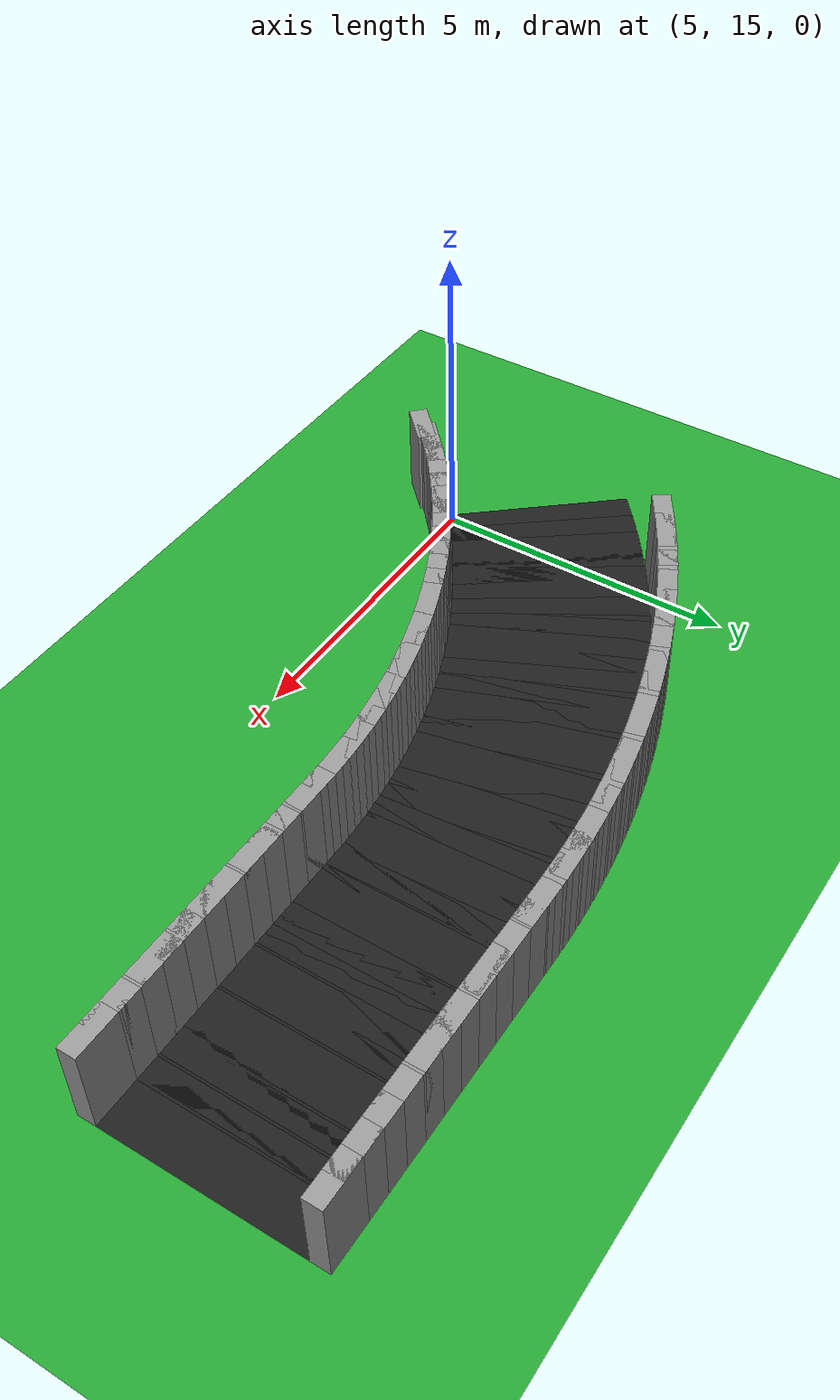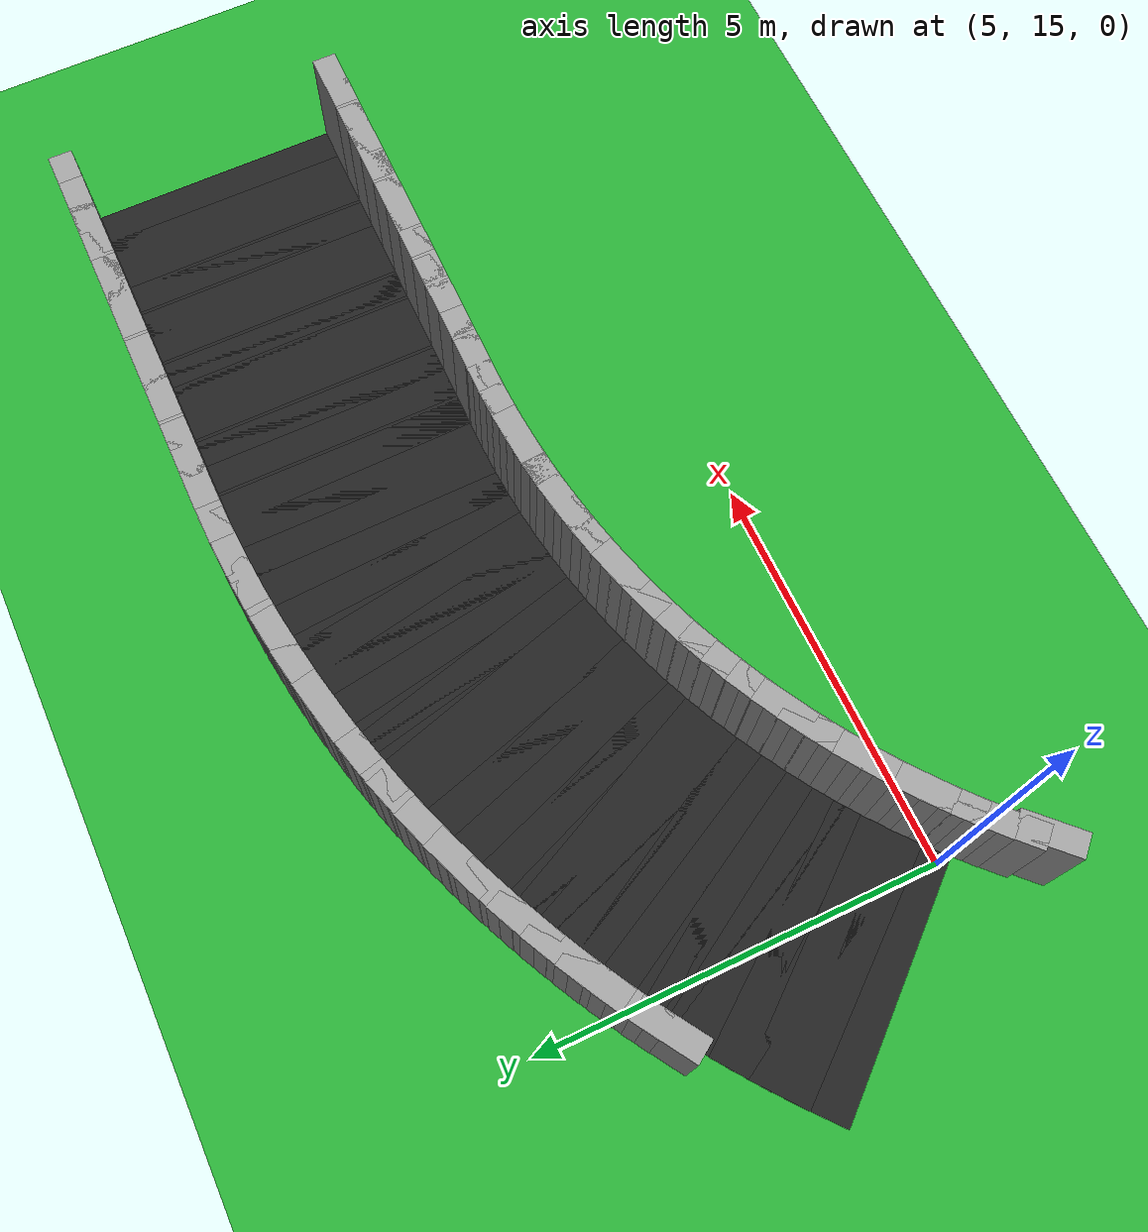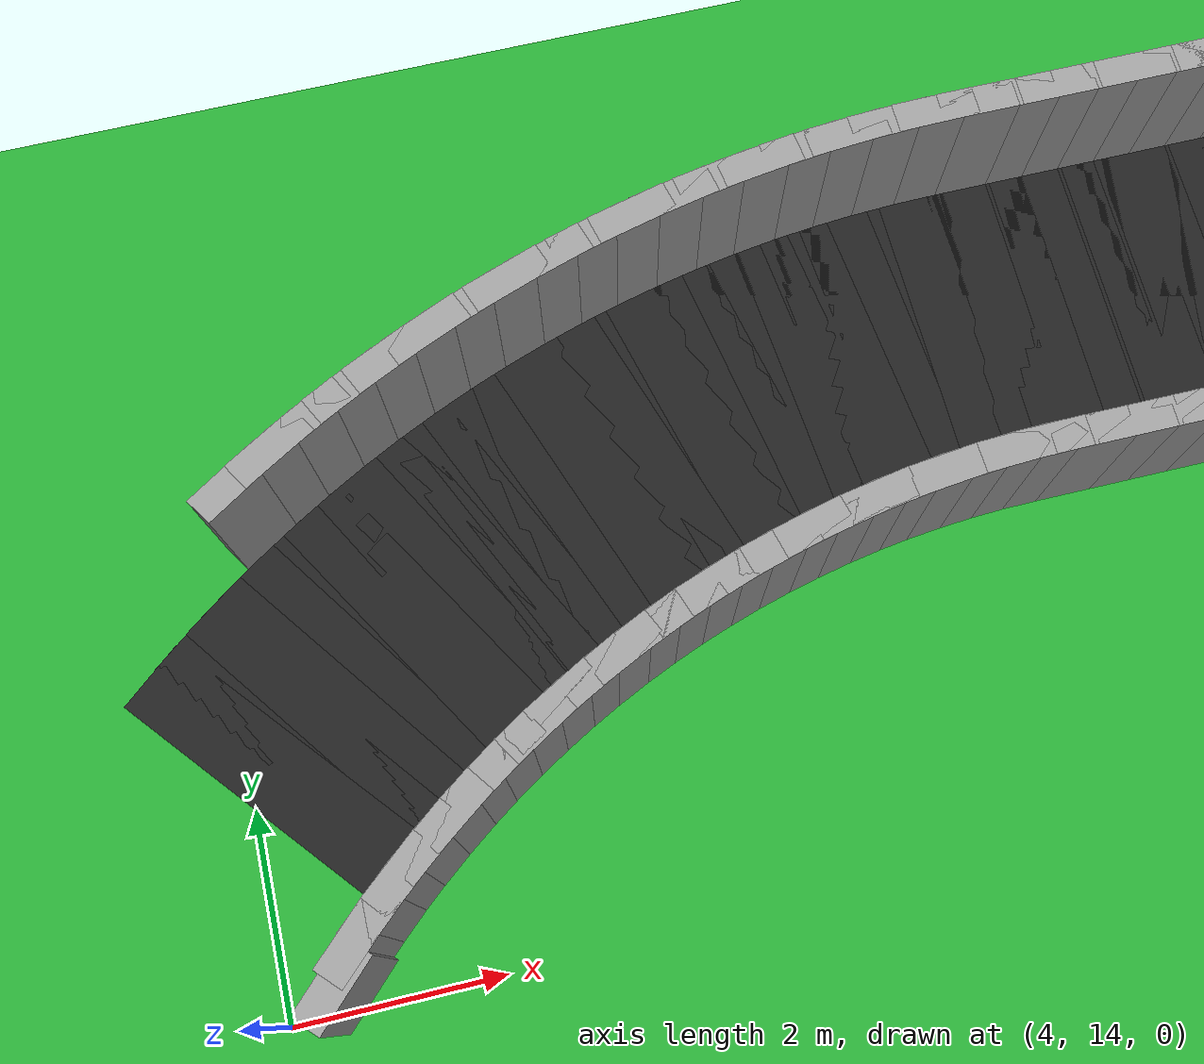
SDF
<sdf version="1.6">
 <world name="obstacle_taper">
  <include><uri>model://sun</uri></include>
  <model name="ground_plane">
   <static>true</static>
   <link name="link">
    <collision name="collision">
     <surface><friction><ode><mu>100</mu><mu2>50</mu2></ode></friction></surface>
     <geometry><plane><normal>0 0 1</normal><size>120 120</size></plane></geometry>
    </collision>
    <visual name="visual">
     <geometry><plane><normal>0 0 1</normal><size>120 120</size></plane></geometry>
     <material>
      <script><uri>file://media/materials/scripts/gazebo.material</uri><name>Gazebo/Green</name></script>
     </material>
    </visual>
   </link>
  </model>
  <model name="asphalt_176">
   <static>true</static>
   <pose>16.620 19.124 0.005 0 0 3.14159</pose>
   <link name="link">
    <visual name="visual">
     <geometry><box><size>0.760 3.200 0.010</size></box></geometry>
     <material>
      <script><uri>file://media/materials/scripts/gazebo.material</uri><name>Gazebo/Black</name></script>
     </material>
    </visual>
   </link>
  </model>
  <model name="curbL_176">
   <static>true</static>
   <pose>16.620 17.374 0.750 0 0 3.14159</pose>
   <link name="link">
    <collision name="collision"><geometry><box><size>0.760 0.300 1.500</size></box></geometry></collision>
    <visual name="visual">
     <geometry><box><size>0.760 0.300 1.500</size></box></geometry>
     <material>
      <script><uri>file://media/materials/scripts/gazebo.material</uri><name>Gazebo/Grey</name></script>
     </material>
    </visual>
   </link>
  </model>
  <model name="curbR_176">
   <static>true</static>
   <pose>16.620 20.874 0.750 0 0 3.14159</pose>
   <link name="link">
    <collision name="collision"><geometry><box><size>0.760 0.300 1.500</size></box></geometry></collision>
    <visual name="visual">
     <geometry><box><size>0.760 0.300 1.500</size></box></geometry>
     <material>
      <script><uri>file://media/materials/scripts/gazebo.material</uri><name>Gazebo/Grey</name></script>
     </material>
    </visual>
   </link>
  </model>
  <model name="asphalt_177">
   <static>true</static>
   <pose>16.220 19.124 0.005 0 0 3.14159</pose>
   <link name="link">
    <visual name="visual">
     <geometry><box><size>0.760 3.200 0.010</size></box></geometry>
     <material>
      <script><uri>file://media/materials/scripts/gazebo.material</uri><name>Gazebo/Black</name></script>
     </material>
    </visual>
   </link>
  </model>
  <model name="curbL_177">
   <static>true</static>
   <pose>16.220 17.374 0.750 0 0 3.14159</pose>
   <link name="link">
    <collision name="collision"><geometry><box><size>0.760 0.300 1.500</size></box></geometry></collision>
    <visual name="visual">
     <geometry><box><size>0.760 0.300 1.500</size></box></geometry>
     <material>
      <script><uri>file://media/materials/scripts/gazebo.material</uri><name>Gazebo/Grey</name></script>
     </material>
    </visual>
   </link>
  </model>
  <model name="curbR_177">
   <static>true</static>
   <pose>16.220 20.874 0.750 0 0 3.14159</pose>
   <link name="link">
    <collision name="collision"><geometry><box><size>0.760 0.300 1.500</size></box></geometry></collision>
    <visual name="visual">
     <geometry><box><size>0.760 0.300 1.500</size></box></geometry>
     <material>
      <script><uri>file://media/materials/scripts/gazebo.material</uri><name>Gazebo/Grey</name></script>
     </material>
    </visual>
   </link>
  </model>
  <model name="asphalt_178">
   <static>true</static>
   <pose>15.820 19.124 0.005 0 0 3.14159</pose>
   <link name="link">
    <visual name="visual">
     <geometry><box><size>0.760 3.200 0.010</size></box></geometry>
     <material>
      <script><uri>file://media/materials/scripts/gazebo.material</uri><name>Gazebo/Black</name></script>
     </material>
    </visual>
   </link>
  </model>
  <model name="curbL_178">
   <static>true</static>
   <pose>15.820 17.374 0.750 0 0 3.14159</pose>
   <link name="link">
    <collision name="collision"><geometry><box><size>0.760 0.300 1.500</size></box></geometry></collision>
    <visual name="visual">
     <geometry><box><size>0.760 0.300 1.500</size></box></geometry>
     <material>
      <script><uri>file://media/materials/scripts/gazebo.material</uri><name>Gazebo/Grey</name></script>
     </material>
    </visual>
   </link>
  </model>
  <model name="curbR_178">
   <static>true</static>
   <pose>15.820 20.874 0.750 0 0 3.14159</pose>
   <link name="link">
    <collision name="collision"><geometry><box><size>0.760 0.300 1.500</size></box></geometry></collision>
    <visual name="visual">
     <geometry><box><size>0.760 0.300 1.500</size></box></geometry>
     <material>
      <script><uri>file://media/materials/scripts/gazebo.material</uri><name>Gazebo/Grey</name></script>
     </material>
    </visual>
   </link>
  </model>
  <model name="asphalt_179">
   <static>true</static>
   <pose>15.420 19.124 0.005 0 0 3.14159</pose>
   <link name="link">
    <visual name="visual">
     <geometry><box><size>0.760 3.200 0.010</size></box></geometry>
     <material>
      <script><uri>file://media/materials/scripts/gazebo.material</uri><name>Gazebo/Black</name></script>
     </material>
    </visual>
   </link>
  </model>
  <model name="curbL_179">
   <static>true</static>
   <pose>15.420 17.374 0.750 0 0 3.14159</pose>
   <link name="link">
    <collision name="collision"><geometry><box><size>0.760 0.300 1.500</size></box></geometry></collision>
    <visual name="visual">
     <geometry><box><size>0.760 0.300 1.500</size></box></geometry>
     <material>
      <script><uri>file://media/materials/scripts/gazebo.material</uri><name>Gazebo/Grey</name></script>
     </material>
    </visual>
   </link>
  </model>
  <model name="curbR_179">
   <static>true</static>
   <pose>15.420 20.874 0.750 0 0 3.14159</pose>
   <link name="link">
    <collision name="collision"><geometry><box><size>0.760 0.300 1.500</size></box></geometry></collision>
    <visual name="visual">
     <geometry><box><size>0.760 0.300 1.500</size></box></geometry>
     <material>
      <script><uri>file://media/materials/scripts/gazebo.material</uri><name>Gazebo/Grey</name></script>
     </material>
    </visual>
   </link>
  </model>
  <model name="asphalt_180">
   <static>true</static>
   <pose>15.020 19.124 0.005 0 0 3.14159</pose>
   <link name="link">
    <visual name="visual">
     <geometry><box><size>0.760 3.200 0.010</size></box></geometry>
     <material>
      <script><uri>file://media/materials/scripts/gazebo.material</uri><name>Gazebo/Black</name></script>
     </material>
    </visual>
   </link>
  </model>
  <model name="curbL_180">
   <static>true</static>
   <pose>15.020 17.374 0.750 0 0 3.14159</pose>
   <link name="link">
    <collision name="collision"><geometry><box><size>0.760 0.300 1.500</size></box></geometry></collision>
    <visual name="visual">
     <geometry><box><size>0.760 0.300 1.500</size></box></geometry>
     <material>
      <script><uri>file://media/materials/scripts/gazebo.material</uri><name>Gazebo/Grey</name></script>
     </material>
    </visual>
   </link>
  </model>
  <model name="curbR_180">
   <static>true</static>
   <pose>15.020 20.874 0.750 0 0 3.14159</pose>
   <link name="link">
    <collision name="collision"><geometry><box><size>0.760 0.300 1.500</size></box></geometry></collision>
    <visual name="visual">
     <geometry><box><size>0.760 0.300 1.500</size></box></geometry>
     <material>
      <script><uri>file://media/materials/scripts/gazebo.material</uri><name>Gazebo/Grey</name></script>
     </material>
    </visual>
   </link>
  </model>
  <model name="asphalt_181">
   <static>true</static>
   <pose>14.620 19.124 0.005 0 0 3.14159</pose>
   <link name="link">
    <visual name="visual">
     <geometry><box><size>0.760 3.200 0.010</size></box></geometry>
     <material>
      <script><uri>file://media/materials/scripts/gazebo.material</uri><name>Gazebo/Black</name></script>
     </material>
    </visual>
   </link>
  </model>
  <model name="curbL_181">
   <static>true</static>
   <pose>14.620 17.374 0.750 0 0 3.14159</pose>
   <link name="link">
    <collision name="collision"><geometry><box><size>0.760 0.300 1.500</size></box></geometry></collision>
    <visual name="visual">
     <geometry><box><size>0.760 0.300 1.500</size></box></geometry>
     <material>
      <script><uri>file://media/materials/scripts/gazebo.material</uri><name>Gazebo/Grey</name></script>
     </material>
    </visual>
   </link>
  </model>
  <model name="curbR_181">
   <static>true</static>
   <pose>14.620 20.874 0.750 0 0 3.14159</pose>
   <link name="link">
    <collision name="collision"><geometry><box><size>0.760 0.300 1.500</size></box></geometry></collision>
    <visual name="visual">
     <geometry><box><size>0.760 0.300 1.500</size></box></geometry>
     <material>
      <script><uri>file://media/materials/scripts/gazebo.material</uri><name>Gazebo/Grey</name></script>
     </material>
    </visual>
   </link>
  </model>
  <model name="asphalt_182">
   <static>true</static>
   <pose>14.220 19.124 0.005 0 0 3.14159</pose>
   <link name="link">
    <visual name="visual">
     <geometry><box><size>0.760 3.200 0.010</size></box></geometry>
     <material>
      <script><uri>file://media/materials/scripts/gazebo.material</uri><name>Gazebo/Black</name></script>
     </material>
    </visual>
   </link>
  </model>
  <model name="curbL_182">
   <static>true</static>
   <pose>14.220 17.374 0.750 0 0 3.14159</pose>
   <link name="link">
    <collision name="collision"><geometry><box><size>0.760 0.300 1.500</size></box></geometry></collision>
    <visual name="visual">
     <geometry><box><size>0.760 0.300 1.500</size></box></geometry>
     <material>
      <script><uri>file://media/materials/scripts/gazebo.material</uri><name>Gazebo/Grey</name></script>
     </material>
    </visual>
   </link>
  </model>
  <model name="curbR_182">
   <static>true</static>
   <pose>14.220 20.874 0.750 0 0 3.14159</pose>
   <link name="link">
    <collision name="collision"><geometry><box><size>0.760 0.300 1.500</size></box></geometry></collision>
    <visual name="visual">
     <geometry><box><size>0.760 0.300 1.500</size></box></geometry>
     <material>
      <script><uri>file://media/materials/scripts/gazebo.material</uri><name>Gazebo/Grey</name></script>
     </material>
    </visual>
   </link>
  </model>
  <model name="asphalt_183">
   <static>true</static>
   <pose>13.820 19.124 0.005 0 0 3.14159</pose>
   <link name="link">
    <visual name="visual">
     <geometry><box><size>0.760 3.200 0.010</size></box></geometry>
     <material>
      <script><uri>file://media/materials/scripts/gazebo.material</uri><name>Gazebo/Black</name></script>
     </material>
    </visual>
   </link>
  </model>
  <model name="curbL_183">
   <static>true</static>
   <pose>13.820 17.374 0.750 0 0 3.14159</pose>
   <link name="link">
    <collision name="collision"><geometry><box><size>0.760 0.300 1.500</size></box></geometry></collision>
    <visual name="visual">
     <geometry><box><size>0.760 0.300 1.500</size></box></geometry>
     <material>
      <script><uri>file://media/materials/scripts/gazebo.material</uri><name>Gazebo/Grey</name></script>
     </material>
    </visual>
   </link>
  </model>
  <model name="curbR_183">
   <static>true</static>
   <pose>13.820 20.874 0.750 0 0 3.14159</pose>
   <link name="link">
    <collision name="collision"><geometry><box><size>0.760 0.300 1.500</size></box></geometry></collision>
    <visual name="visual">
     <geometry><box><size>0.760 0.300 1.500</size></box></geometry>
     <material>
      <script><uri>file://media/materials/scripts/gazebo.material</uri><name>Gazebo/Grey</name></script>
     </material>
    </visual>
   </link>
  </model>
  <model name="asphalt_184">
   <static>true</static>
   <pose>13.420 19.124 0.005 0 0 3.14159</pose>
   <link name="link">
    <visual name="visual">
     <geometry><box><size>0.760 3.200 0.010</size></box></geometry>
     <material>
      <script><uri>file://media/materials/scripts/gazebo.material</uri><name>Gazebo/Black</name></script>
     </material>
    </visual>
   </link>
  </model>
  <model name="curbL_184">
   <static>true</static>
   <pose>13.420 17.374 0.750 0 0 3.14159</pose>
   <link name="link">
    <collision name="collision"><geometry><box><size>0.760 0.300 1.500</size></box></geometry></collision>
    <visual name="visual">
     <geometry><box><size>0.760 0.300 1.500</size></box></geometry>
     <material>
      <script><uri>file://media/materials/scripts/gazebo.material</uri><name>Gazebo/Grey</name></script>
     </material>
    </visual>
   </link>
  </model>
  <model name="curbR_184">
   <static>true</static>
   <pose>13.420 20.874 0.750 0 0 3.14159</pose>
   <link name="link">
    <collision name="collision"><geometry><box><size>0.760 0.300 1.500</size></box></geometry></collision>
    <visual name="visual">
     <geometry><box><size>0.760 0.300 1.500</size></box></geometry>
     <material>
      <script><uri>file://media/materials/scripts/gazebo.material</uri><name>Gazebo/Grey</name></script>
     </material>
    </visual>
   </link>
  </model>
  <model name="asphalt_185">
   <static>true</static>
   <pose>13.020 19.124 0.005 0 0 3.14159</pose>
   <link name="link">
    <visual name="visual">
     <geometry><box><size>0.760 3.200 0.010</size></box></geometry>
     <material>
      <script><uri>file://media/materials/scripts/gazebo.material</uri><name>Gazebo/Black</name></script>
     </material>
    </visual>
   </link>
  </model>
  <model name="curbL_185">
   <static>true</static>
   <pose>13.020 17.374 0.750 0 0 3.14159</pose>
   <link name="link">
    <collision name="collision"><geometry><box><size>0.760 0.300 1.500</size></box></geometry></collision>
    <visual name="visual">
     <geometry><box><size>0.760 0.300 1.500</size></box></geometry>
     <material>
      <script><uri>file://media/materials/scripts/gazebo.material</uri><name>Gazebo/Grey</name></script>
     </material>
    </visual>
   </link>
  </model>
  <model name="curbR_185">
   <static>true</static>
   <pose>13.020 20.874 0.750 0 0 3.14159</pose>
   <link name="link">
    <collision name="collision"><geometry><box><size>0.760 0.300 1.500</size></box></geometry></collision>
    <visual name="visual">
     <geometry><box><size>0.760 0.300 1.500</size></box></geometry>
     <material>
      <script><uri>file://media/materials/scripts/gazebo.material</uri><name>Gazebo/Grey</name></script>
     </material>
    </visual>
   </link>
  </model>
  <model name="asphalt_186">
   <static>true</static>
   <pose>12.620 19.124 0.005 0 0 3.14159</pose>
   <link name="link">
    <visual name="visual">
     <geometry><box><size>0.760 3.200 0.010</size></box></geometry>
     <material>
      <script><uri>file://media/materials/scripts/gazebo.material</uri><name>Gazebo/Black</name></script>
     </material>
    </visual>
   </link>
  </model>
  <model name="curbL_186">
   <static>true</static>
   <pose>12.620 17.374 0.750 0 0 3.14159</pose>
   <link name="link">
    <collision name="collision"><geometry><box><size>0.760 0.300 1.500</size></box></geometry></collision>
    <visual name="visual">
     <geometry><box><size>0.760 0.300 1.500</size></box></geometry>
     <material>
      <script><uri>file://media/materials/scripts/gazebo.material</uri><name>Gazebo/Grey</name></script>
     </material>
    </visual>
   </link>
  </model>
  <model name="curbR_186">
   <static>true</static>
   <pose>12.620 20.874 0.750 0 0 3.14159</pose>
   <link name="link">
    <collision name="collision"><geometry><box><size>0.760 0.300 1.500</size></box></geometry></collision>
    <visual name="visual">
     <geometry><box><size>0.760 0.300 1.500</size></box></geometry>
     <material>
      <script><uri>file://media/materials/scripts/gazebo.material</uri><name>Gazebo/Grey</name></script>
     </material>
    </visual>
   </link>
  </model>
  <model name="asphalt_187">
   <static>true</static>
   <pose>12.220 19.124 0.005 0 0 3.14159</pose>
   <link name="link">
    <visual name="visual">
     <geometry><box><size>0.760 3.200 0.010</size></box></geometry>
     <material>
      <script><uri>file://media/materials/scripts/gazebo.material</uri><name>Gazebo/Black</name></script>
     </material>
    </visual>
   </link>
  </model>
  <model name="curbL_187">
   <static>true</static>
   <pose>12.220 17.374 0.750 0 0 3.14159</pose>
   <link name="link">
    <collision name="collision"><geometry><box><size>0.760 0.300 1.500</size></box></geometry></collision>
    <visual name="visual">
     <geometry><box><size>0.760 0.300 1.500</size></box></geometry>
     <material>
      <script><uri>file://media/materials/scripts/gazebo.material</uri><name>Gazebo/Grey</name></script>
     </material>
    </visual>
   </link>
  </model>
  <model name="curbR_187">
   <static>true</static>
   <pose>12.220 20.874 0.750 0 0 3.14159</pose>
   <link name="link">
    <collision name="collision"><geometry><box><size>0.760 0.300 1.500</size></box></geometry></collision>
    <visual name="visual">
     <geometry><box><size>0.760 0.300 1.500</size></box></geometry>
     <material>
      <script><uri>file://media/materials/scripts/gazebo.material</uri><name>Gazebo/Grey</name></script>
     </material>
    </visual>
   </link>
  </model>
  <model name="asphalt_188">
   <static>true</static>
   <pose>11.824 19.121 0.005 0 0 -3.12523</pose>
   <link name="link">
    <visual name="visual">
     <geometry><box><size>0.753 3.200 0.010</size></box></geometry>
     <material>
      <script><uri>file://media/materials/scripts/gazebo.material</uri><name>Gazebo/Black</name></script>
     </material>
    </visual>
   </link>
  </model>
  <model name="curbL_188">
   <static>true</static>
   <pose>11.853 17.371 0.750 0 0 -3.12523</pose>
   <link name="link">
    <collision name="collision"><geometry><box><size>0.695 0.300 1.500</size></box></geometry></collision>
    <visual name="visual">
     <geometry><box><size>0.695 0.300 1.500</size></box></geometry>
     <material>
      <script><uri>file://media/materials/scripts/gazebo.material</uri><name>Gazebo/Grey</name></script>
     </material>
    </visual>
   </link>
  </model>
  <model name="curbR_188">
   <static>true</static>
   <pose>11.795 20.870 0.750 0 0 -3.12523</pose>
   <link name="link">
    <collision name="collision"><geometry><box><size>0.810 0.300 1.500</size></box></geometry></collision>
    <visual name="visual">
     <geometry><box><size>0.810 0.300 1.500</size></box></geometry>
     <material>
      <script><uri>file://media/materials/scripts/gazebo.material</uri><name>Gazebo/Grey</name></script>
     </material>
    </visual>
   </link>
  </model>
  <model name="asphalt_189">
   <static>true</static>
   <pose>11.431 19.108 0.005 0 0 -3.09251</pose>
   <link name="link">
    <visual name="visual">
     <geometry><box><size>0.753 3.200 0.010</size></box></geometry>
     <material>
      <script><uri>file://media/materials/scripts/gazebo.material</uri><name>Gazebo/Black</name></script>
     </material>
    </visual>
   </link>
  </model>
  <model name="curbL_189">
   <static>true</static>
   <pose>11.517 17.360 0.750 0 0 -3.09251</pose>
   <link name="link">
    <collision name="collision"><geometry><box><size>0.695 0.300 1.500</size></box></geometry></collision>
    <visual name="visual">
     <geometry><box><size>0.695 0.300 1.500</size></box></geometry>
     <material>
      <script><uri>file://media/materials/scripts/gazebo.material</uri><name>Gazebo/Grey</name></script>
     </material>
    </visual>
   </link>
  </model>
  <model name="curbR_189">
   <static>true</static>
   <pose>11.346 20.855 0.750 0 0 -3.09251</pose>
   <link name="link">
    <collision name="collision"><geometry><box><size>0.810 0.300 1.500</size></box></geometry></collision>
    <visual name="visual">
     <geometry><box><size>0.810 0.300 1.500</size></box></geometry>
     <material>
      <script><uri>file://media/materials/scripts/gazebo.material</uri><name>Gazebo/Grey</name></script>
     </material>
    </visual>
   </link>
  </model>
  <model name="asphalt_190">
   <static>true</static>
   <pose>11.040 19.082 0.005 0 0 -3.05978</pose>
   <link name="link">
    <visual name="visual">
     <geometry><box><size>0.753 3.200 0.010</size></box></geometry>
     <material>
      <script><uri>file://media/materials/scripts/gazebo.material</uri><name>Gazebo/Black</name></script>
     </material>
    </visual>
   </link>
  </model>
  <model name="curbL_190">
   <static>true</static>
   <pose>11.183 17.338 0.750 0 0 -3.05978</pose>
   <link name="link">
    <collision name="collision"><geometry><box><size>0.695 0.300 1.500</size></box></geometry></collision>
    <visual name="visual">
     <geometry><box><size>0.695 0.300 1.500</size></box></geometry>
     <material>
      <script><uri>file://media/materials/scripts/gazebo.material</uri><name>Gazebo/Grey</name></script>
     </material>
    </visual>
   </link>
  </model>
  <model name="curbR_190">
   <static>true</static>
   <pose>10.897 20.826 0.750 0 0 -3.05978</pose>
   <link name="link">
    <collision name="collision"><geometry><box><size>0.810 0.300 1.500</size></box></geometry></collision>
    <visual name="visual">
     <geometry><box><size>0.810 0.300 1.500</size></box></geometry>
     <material>
      <script><uri>file://media/materials/scripts/gazebo.material</uri><name>Gazebo/Grey</name></script>
     </material>
    </visual>
   </link>
  </model>
  <model name="asphalt_191">
   <static>true</static>
   <pose>10.649 19.044 0.005 0 0 -3.02706</pose>
   <link name="link">
    <visual name="visual">
     <geometry><box><size>0.753 3.200 0.010</size></box></geometry>
     <material>
      <script><uri>file://media/materials/scripts/gazebo.material</uri><name>Gazebo/Black</name></script>
     </material>
    </visual>
   </link>
  </model>
  <model name="curbL_191">
   <static>true</static>
   <pose>10.849 17.305 0.750 0 0 -3.02706</pose>
   <link name="link">
    <collision name="collision"><geometry><box><size>0.695 0.300 1.500</size></box></geometry></collision>
    <visual name="visual">
     <geometry><box><size>0.695 0.300 1.500</size></box></geometry>
     <material>
      <script><uri>file://media/materials/scripts/gazebo.material</uri><name>Gazebo/Grey</name></script>
     </material>
    </visual>
   </link>
  </model>
  <model name="curbR_191">
   <static>true</static>
   <pose>10.449 20.782 0.750 0 0 -3.02706</pose>
   <link name="link">
    <collision name="collision"><geometry><box><size>0.810 0.300 1.500</size></box></geometry></collision>
    <visual name="visual">
     <geometry><box><size>0.810 0.300 1.500</size></box></geometry>
     <material>
      <script><uri>file://media/materials/scripts/gazebo.material</uri><name>Gazebo/Grey</name></script>
     </material>
    </visual>
   </link>
  </model>
  <model name="asphalt_192">
   <static>true</static>
   <pose>10.260 18.992 0.005 0 0 -2.99433</pose>
   <link name="link">
    <visual name="visual">
     <geometry><box><size>0.753 3.200 0.010</size></box></geometry>
     <material>
      <script><uri>file://media/materials/scripts/gazebo.material</uri><name>Gazebo/Black</name></script>
     </material>
    </visual>
   </link>
  </model>
  <model name="curbL_192">
   <static>true</static>
   <pose>10.516 17.262 0.750 0 0 -2.99433</pose>
   <link name="link">
    <collision name="collision"><geometry><box><size>0.695 0.300 1.500</size></box></geometry></collision>
    <visual name="visual">
     <geometry><box><size>0.695 0.300 1.500</size></box></geometry>
     <material>
      <script><uri>file://media/materials/scripts/gazebo.material</uri><name>Gazebo/Grey</name></script>
     </material>
    </visual>
   </link>
  </model>
  <model name="curbR_192">
   <static>true</static>
   <pose>10.003 20.723 0.750 0 0 -2.99433</pose>
   <link name="link">
    <collision name="collision"><geometry><box><size>0.810 0.300 1.500</size></box></geometry></collision>
    <visual name="visual">
     <geometry><box><size>0.810 0.300 1.500</size></box></geometry>
     <material>
      <script><uri>file://media/materials/scripts/gazebo.material</uri><name>Gazebo/Grey</name></script>
     </material>
    </visual>
   </link>
  </model>
  <model name="asphalt_193">
   <static>true</static>
   <pose>9.872 18.928 0.005 0 0 -2.96161</pose>
   <link name="link">
    <visual name="visual">
     <geometry><box><size>0.753 3.200 0.010</size></box></geometry>
     <material>
      <script><uri>file://media/materials/scripts/gazebo.material</uri><name>Gazebo/Black</name></script>
     </material>
    </visual>
   </link>
  </model>
  <model name="curbL_193">
   <static>true</static>
   <pose>10.185 17.207 0.750 0 0 -2.96161</pose>
   <link name="link">
    <collision name="collision"><geometry><box><size>0.695 0.300 1.500</size></box></geometry></collision>
    <visual name="visual">
     <geometry><box><size>0.695 0.300 1.500</size></box></geometry>
     <material>
      <script><uri>file://media/materials/scripts/gazebo.material</uri><name>Gazebo/Grey</name></script>
     </material>
    </visual>
   </link>
  </model>
  <model name="curbR_193">
   <static>true</static>
   <pose>9.559 20.650 0.750 0 0 -2.96161</pose>
   <link name="link">
    <collision name="collision"><geometry><box><size>0.810 0.300 1.500</size></box></geometry></collision>
    <visual name="visual">
     <geometry><box><size>0.810 0.300 1.500</size></box></geometry>
     <material>
      <script><uri>file://media/materials/scripts/gazebo.material</uri><name>Gazebo/Grey</name></script>
     </material>
    </visual>
   </link>
  </model>
  <model name="asphalt_194">
   <static>true</static>
   <pose>9.487 18.852 0.005 0 0 -2.92888</pose>
   <link name="link">
    <visual name="visual">
     <geometry><box><size>0.753 3.200 0.010</size></box></geometry>
     <material>
      <script><uri>file://media/materials/scripts/gazebo.material</uri><name>Gazebo/Black</name></script>
     </material>
    </visual>
   </link>
  </model>
  <model name="curbL_194">
   <static>true</static>
   <pose>9.857 17.141 0.750 0 0 -2.92888</pose>
   <link name="link">
    <collision name="collision"><geometry><box><size>0.695 0.300 1.500</size></box></geometry></collision>
    <visual name="visual">
     <geometry><box><size>0.695 0.300 1.500</size></box></geometry>
     <material>
      <script><uri>file://media/materials/scripts/gazebo.material</uri><name>Gazebo/Grey</name></script>
     </material>
    </visual>
   </link>
  </model>
  <model name="curbR_194">
   <static>true</static>
   <pose>9.118 20.562 0.750 0 0 -2.92888</pose>
   <link name="link">
    <collision name="collision"><geometry><box><size>0.810 0.300 1.500</size></box></geometry></collision>
    <visual name="visual">
     <geometry><box><size>0.810 0.300 1.500</size></box></geometry>
     <material>
      <script><uri>file://media/materials/scripts/gazebo.material</uri><name>Gazebo/Grey</name></script>
     </material>
    </visual>
   </link>
  </model>
  <model name="asphalt_195">
   <static>true</static>
   <pose>9.105 18.763 0.005 0 0 -2.89616</pose>
   <link name="link">
    <visual name="visual">
     <geometry><box><size>0.753 3.200 0.010</size></box></geometry>
     <material>
      <script><uri>file://media/materials/scripts/gazebo.material</uri><name>Gazebo/Black</name></script>
     </material>
    </visual>
   </link>
  </model>
  <model name="curbL_195">
   <static>true</static>
   <pose>9.530 17.065 0.750 0 0 -2.89616</pose>
   <link name="link">
    <collision name="collision"><geometry><box><size>0.695 0.300 1.500</size></box></geometry></collision>
    <visual name="visual">
     <geometry><box><size>0.695 0.300 1.500</size></box></geometry>
     <material>
      <script><uri>file://media/materials/scripts/gazebo.material</uri><name>Gazebo/Grey</name></script>
     </material>
    </visual>
   </link>
  </model>
  <model name="curbR_195">
   <static>true</static>
   <pose>8.680 20.460 0.750 0 0 -2.89616</pose>
   <link name="link">
    <collision name="collision"><geometry><box><size>0.810 0.300 1.500</size></box></geometry></collision>
    <visual name="visual">
     <geometry><box><size>0.810 0.300 1.500</size></box></geometry>
     <material>
      <script><uri>file://media/materials/scripts/gazebo.material</uri><name>Gazebo/Grey</name></script>
     </material>
    </visual>
   </link>
  </model>
  <model name="asphalt_196">
   <static>true</static>
   <pose>8.725 18.661 0.005 0 0 -2.86343</pose>
   <link name="link">
    <visual name="visual">
     <geometry><box><size>0.753 3.200 0.010</size></box></geometry>
     <material>
      <script><uri>file://media/materials/scripts/gazebo.material</uri><name>Gazebo/Black</name></script>
     </material>
    </visual>
   </link>
  </model>
  <model name="curbL_196">
   <static>true</static>
   <pose>9.206 16.978 0.750 0 0 -2.86343</pose>
   <link name="link">
    <collision name="collision"><geometry><box><size>0.695 0.300 1.500</size></box></geometry></collision>
    <visual name="visual">
     <geometry><box><size>0.695 0.300 1.500</size></box></geometry>
     <material>
      <script><uri>file://media/materials/scripts/gazebo.material</uri><name>Gazebo/Grey</name></script>
     </material>
    </visual>
   </link>
  </model>
  <model name="curbR_196">
   <static>true</static>
   <pose>8.245 20.344 0.750 0 0 -2.86343</pose>
   <link name="link">
    <collision name="collision"><geometry><box><size>0.810 0.300 1.500</size></box></geometry></collision>
    <visual name="visual">
     <geometry><box><size>0.810 0.300 1.500</size></box></geometry>
     <material>
      <script><uri>file://media/materials/scripts/gazebo.material</uri><name>Gazebo/Grey</name></script>
     </material>
    </visual>
   </link>
  </model>
  <model name="asphalt_197">
   <static>true</static>
   <pose>8.350 18.547 0.005 0 0 -2.83071</pose>
   <link name="link">
    <visual name="visual">
     <geometry><box><size>0.753 3.200 0.010</size></box></geometry>
     <material>
      <script><uri>file://media/materials/scripts/gazebo.material</uri><name>Gazebo/Black</name></script>
     </material>
    </visual>
   </link>
  </model>
  <model name="curbL_197">
   <static>true</static>
   <pose>8.885 16.881 0.750 0 0 -2.83071</pose>
   <link name="link">
    <collision name="collision"><geometry><box><size>0.695 0.300 1.500</size></box></geometry></collision>
    <visual name="visual">
     <geometry><box><size>0.695 0.300 1.500</size></box></geometry>
     <material>
      <script><uri>file://media/materials/scripts/gazebo.material</uri><name>Gazebo/Grey</name></script>
     </material>
    </visual>
   </link>
  </model>
  <model name="curbR_197">
   <static>true</static>
   <pose>7.814 20.213 0.750 0 0 -2.83071</pose>
   <link name="link">
    <collision name="collision"><geometry><box><size>0.810 0.300 1.500</size></box></geometry></collision>
    <visual name="visual">
     <geometry><box><size>0.810 0.300 1.500</size></box></geometry>
     <material>
      <script><uri>file://media/materials/scripts/gazebo.material</uri><name>Gazebo/Grey</name></script>
     </material>
    </visual>
   </link>
  </model>
  <model name="asphalt_198">
   <static>true</static>
   <pose>7.978 18.421 0.005 0 0 -2.79798</pose>
   <link name="link">
    <visual name="visual">
     <geometry><box><size>0.753 3.200 0.010</size></box></geometry>
     <material>
      <script><uri>file://media/materials/scripts/gazebo.material</uri><name>Gazebo/Black</name></script>
     </material>
    </visual>
   </link>
  </model>
  <model name="curbL_198">
   <static>true</static>
   <pose>8.567 16.773 0.750 0 0 -2.79798</pose>
   <link name="link">
    <collision name="collision"><geometry><box><size>0.695 0.300 1.500</size></box></geometry></collision>
    <visual name="visual">
     <geometry><box><size>0.695 0.300 1.500</size></box></geometry>
     <material>
      <script><uri>file://media/materials/scripts/gazebo.material</uri><name>Gazebo/Grey</name></script>
     </material>
    </visual>
   </link>
  </model>
  <model name="curbR_198">
   <static>true</static>
   <pose>7.388 20.068 0.750 0 0 -2.79798</pose>
   <link name="link">
    <collision name="collision"><geometry><box><size>0.810 0.300 1.500</size></box></geometry></collision>
    <visual name="visual">
     <geometry><box><size>0.810 0.300 1.500</size></box></geometry>
     <material>
      <script><uri>file://media/materials/scripts/gazebo.material</uri><name>Gazebo/Grey</name></script>
     </material>
    </visual>
   </link>
  </model>
  <model name="asphalt_199">
   <static>true</static>
   <pose>7.610 18.283 0.005 0 0 -2.76526</pose>
   <link name="link">
    <visual name="visual">
     <geometry><box><size>0.753 3.200 0.010</size></box></geometry>
     <material>
      <script><uri>file://media/materials/scripts/gazebo.material</uri><name>Gazebo/Black</name></script>
     </material>
    </visual>
   </link>
  </model>
  <model name="curbL_199">
   <static>true</static>
   <pose>8.253 16.655 0.750 0 0 -2.76526</pose>
   <link name="link">
    <collision name="collision"><geometry><box><size>0.695 0.300 1.500</size></box></geometry></collision>
    <visual name="visual">
     <geometry><box><size>0.695 0.300 1.500</size></box></geometry>
     <material>
      <script><uri>file://media/materials/scripts/gazebo.material</uri><name>Gazebo/Grey</name></script>
     </material>
    </visual>
   </link>
  </model>
  <model name="curbR_199">
   <static>true</static>
   <pose>6.967 19.910 0.750 0 0 -2.76526</pose>
   <link name="link">
    <collision name="collision"><geometry><box><size>0.810 0.300 1.500</size></box></geometry></collision>
    <visual name="visual">
     <geometry><box><size>0.810 0.300 1.500</size></box></geometry>
     <material>
      <script><uri>file://media/materials/scripts/gazebo.material</uri><name>Gazebo/Grey</name></script>
     </material>
    </visual>
   </link>
  </model>
  <model name="asphalt_200">
   <static>true</static>
   <pose>7.248 18.132 0.005 0 0 -2.73253</pose>
   <link name="link">
    <visual name="visual">
     <geometry><box><size>0.753 3.200 0.010</size></box></geometry>
     <material>
      <script><uri>file://media/materials/scripts/gazebo.material</uri><name>Gazebo/Black</name></script>
     </material>
    </visual>
   </link>
  </model>
  <model name="curbL_200">
   <static>true</static>
   <pose>7.944 16.527 0.750 0 0 -2.73253</pose>
   <link name="link">
    <collision name="collision"><geometry><box><size>0.695 0.300 1.500</size></box></geometry></collision>
    <visual name="visual">
     <geometry><box><size>0.695 0.300 1.500</size></box></geometry>
     <material>
      <script><uri>file://media/materials/scripts/gazebo.material</uri><name>Gazebo/Grey</name></script>
     </material>
    </visual>
   </link>
  </model>
  <model name="curbR_200">
   <static>true</static>
   <pose>6.552 19.738 0.750 0 0 -2.73253</pose>
   <link name="link">
    <collision name="collision"><geometry><box><size>0.810 0.300 1.500</size></box></geometry></collision>
    <visual name="visual">
     <geometry><box><size>0.810 0.300 1.500</size></box></geometry>
     <material>
      <script><uri>file://media/materials/scripts/gazebo.material</uri><name>Gazebo/Grey</name></script>
     </material>
    </visual>
   </link>
  </model>
  <model name="asphalt_201">
   <static>true</static>
   <pose>6.890 17.970 0.005 0 0 -2.69981</pose>
   <link name="link">
    <visual name="visual">
     <geometry><box><size>0.753 3.200 0.010</size></box></geometry>
     <material>
      <script><uri>file://media/materials/scripts/gazebo.material</uri><name>Gazebo/Black</name></script>
     </material>
    </visual>
   </link>
  </model>
  <model name="curbL_201">
   <static>true</static>
   <pose>7.638 16.388 0.750 0 0 -2.69981</pose>
   <link name="link">
    <collision name="collision"><geometry><box><size>0.695 0.300 1.500</size></box></geometry></collision>
    <visual name="visual">
     <geometry><box><size>0.695 0.300 1.500</size></box></geometry>
     <material>
      <script><uri>file://media/materials/scripts/gazebo.material</uri><name>Gazebo/Grey</name></script>
     </material>
    </visual>
   </link>
  </model>
  <model name="curbR_201">
   <static>true</static>
   <pose>6.142 19.552 0.750 0 0 -2.69981</pose>
   <link name="link">
    <collision name="collision"><geometry><box><size>0.810 0.300 1.500</size></box></geometry></collision>
    <visual name="visual">
     <geometry><box><size>0.810 0.300 1.500</size></box></geometry>
     <material>
      <script><uri>file://media/materials/scripts/gazebo.material</uri><name>Gazebo/Grey</name></script>
     </material>
    </visual>
   </link>
  </model>
  <model name="asphalt_202">
   <static>true</static>
   <pose>6.538 17.797 0.005 0 0 -2.66708</pose>
   <link name="link">
    <visual name="visual">
     <geometry><box><size>0.753 3.200 0.010</size></box></geometry>
     <material>
      <script><uri>file://media/materials/scripts/gazebo.material</uri><name>Gazebo/Black</name></script>
     </material>
    </visual>
   </link>
  </model>
  <model name="curbL_202">
   <static>true</static>
   <pose>7.337 16.240 0.750 0 0 -2.66708</pose>
   <link name="link">
    <collision name="collision"><geometry><box><size>0.695 0.300 1.500</size></box></geometry></collision>
    <visual name="visual">
     <geometry><box><size>0.695 0.300 1.500</size></box></geometry>
     <material>
      <script><uri>file://media/materials/scripts/gazebo.material</uri><name>Gazebo/Grey</name></script>
     </material>
    </visual>
   </link>
  </model>
  <model name="curbR_202">
   <static>true</static>
   <pose>5.738 19.353 0.750 0 0 -2.66708</pose>
   <link name="link">
    <collision name="collision"><geometry><box><size>0.810 0.300 1.500</size></box></geometry></collision>
    <visual name="visual">
     <geometry><box><size>0.810 0.300 1.500</size></box></geometry>
     <material>
      <script><uri>file://media/materials/scripts/gazebo.material</uri><name>Gazebo/Grey</name></script>
     </material>
    </visual>
   </link>
  </model>
  <model name="asphalt_203">
   <static>true</static>
   <pose>6.192 17.611 0.005 0 0 -2.63436</pose>
   <link name="link">
    <visual name="visual">
     <geometry><box><size>0.753 3.200 0.010</size></box></geometry>
     <material>
      <script><uri>file://media/materials/scripts/gazebo.material</uri><name>Gazebo/Black</name></script>
     </material>
    </visual>
   </link>
  </model>
  <model name="curbL_203">
   <static>true</static>
   <pose>7.042 16.082 0.750 0 0 -2.63436</pose>
   <link name="link">
    <collision name="collision"><geometry><box><size>0.695 0.300 1.500</size></box></geometry></collision>
    <visual name="visual">
     <geometry><box><size>0.695 0.300 1.500</size></box></geometry>
     <material>
      <script><uri>file://media/materials/scripts/gazebo.material</uri><name>Gazebo/Grey</name></script>
     </material>
    </visual>
   </link>
  </model>
  <model name="curbR_203">
   <static>true</static>
   <pose>5.342 19.141 0.750 0 0 -2.63436</pose>
   <link name="link">
    <collision name="collision"><geometry><box><size>0.810 0.300 1.500</size></box></geometry></collision>
    <visual name="visual">
     <geometry><box><size>0.810 0.300 1.500</size></box></geometry>
     <material>
      <script><uri>file://media/materials/scripts/gazebo.material</uri><name>Gazebo/Grey</name></script>
     </material>
    </visual>
   </link>
  </model>
  <model name="asphalt_204">
   <static>true</static>
   <pose>5.852 17.415 0.005 0 0 -2.60163</pose>
   <link name="link">
    <visual name="visual">
     <geometry><box><size>0.753 3.200 0.010</size></box></geometry>
     <material>
      <script><uri>file://media/materials/scripts/gazebo.material</uri><name>Gazebo/Black</name></script>
     </material>
    </visual>
   </link>
  </model>
  <model name="curbL_204">
   <static>true</static>
   <pose>6.751 15.914 0.750 0 0 -2.60163</pose>
   <link name="link">
    <collision name="collision"><geometry><box><size>0.695 0.300 1.500</size></box></geometry></collision>
    <visual name="visual">
     <geometry><box><size>0.695 0.300 1.500</size></box></geometry>
     <material>
      <script><uri>file://media/materials/scripts/gazebo.material</uri><name>Gazebo/Grey</name></script>
     </material>
    </visual>
   </link>
  </model>
  <model name="curbR_204">
   <static>true</static>
   <pose>4.952 18.916 0.750 0 0 -2.60163</pose>
   <link name="link">
    <collision name="collision"><geometry><box><size>0.810 0.300 1.500</size></box></geometry></collision>
    <visual name="visual">
     <geometry><box><size>0.810 0.300 1.500</size></box></geometry>
     <material>
      <script><uri>file://media/materials/scripts/gazebo.material</uri><name>Gazebo/Grey</name></script>
     </material>
    </visual>
   </link>
  </model>
  <model name="asphalt_205">
   <static>true</static>
   <pose>5.518 17.208 0.005 0 0 -2.56891</pose>
   <link name="link">
    <visual name="visual">
     <geometry><box><size>0.753 3.200 0.010</size></box></geometry>
     <material>
      <script><uri>file://media/materials/scripts/gazebo.material</uri><name>Gazebo/Black</name></script>
     </material>
    </visual>
   </link>
  </model>
  <model name="curbL_205">
   <static>true</static>
   <pose>6.466 15.737 0.750 0 0 -2.56891</pose>
   <link name="link">
    <collision name="collision"><geometry><box><size>0.695 0.300 1.500</size></box></geometry></collision>
    <visual name="visual">
     <geometry><box><size>0.695 0.300 1.500</size></box></geometry>
     <material>
      <script><uri>file://media/materials/scripts/gazebo.material</uri><name>Gazebo/Grey</name></script>
     </material>
    </visual>
   </link>
  </model>
  <model name="curbR_205">
   <static>true</static>
   <pose>4.570 18.678 0.750 0 0 -2.56891</pose>
   <link name="link">
    <collision name="collision"><geometry><box><size>0.810 0.300 1.500</size></box></geometry></collision>
    <visual name="visual">
     <geometry><box><size>0.810 0.300 1.500</size></box></geometry>
     <material>
      <script><uri>file://media/materials/scripts/gazebo.material</uri><name>Gazebo/Grey</name></script>
     </material>
    </visual>
   </link>
  </model>
  <model name="asphalt_206">
   <static>true</static>
   <pose>5.192 16.990 0.005 0 0 -2.53618</pose>
   <link name="link">
    <visual name="visual">
     <geometry><box><size>0.753 3.200 0.010</size></box></geometry>
     <material>
      <script><uri>file://media/materials/scripts/gazebo.material</uri><name>Gazebo/Black</name></script>
     </material>
    </visual>
   </link>
  </model>
  <model name="curbL_206">
   <static>true</static>
   <pose>6.187 15.551 0.750 0 0 -2.53618</pose>
   <link name="link">
    <collision name="collision"><geometry><box><size>0.695 0.300 1.500</size></box></geometry></collision>
    <visual name="visual">
     <geometry><box><size>0.695 0.300 1.500</size></box></geometry>
     <material>
      <script><uri>file://media/materials/scripts/gazebo.material</uri><name>Gazebo/Grey</name></script>
     </material>
    </visual>
   </link>
  </model>
  <model name="asphalt_207">
   <static>true</static>
   <pose>4.872 16.761 0.005 0 0 -2.50346</pose>
   <link name="link">
    <visual name="visual">
     <geometry><box><size>0.753 3.200 0.010</size></box></geometry>
     <material>
      <script><uri>file://media/materials/scripts/gazebo.material</uri><name>Gazebo/Black</name></script>
     </material>
    </visual>
   </link>
  </model>
  <model name="curbL_207">
   <static>true</static>
   <pose>5.915 15.355 0.750 0 0 -2.50346</pose>
   <link name="link">
    <collision name="collision"><geometry><box><size>0.695 0.300 1.500</size></box></geometry></collision>
    <visual name="visual">
     <geometry><box><size>0.695 0.300 1.500</size></box></geometry>
     <material>
      <script><uri>file://media/materials/scripts/gazebo.material</uri><name>Gazebo/Grey</name></script>
     </material>
    </visual>
   </link>
  </model>
  <model name="asphalt_208">
   <static>true</static>
   <pose>4.561 16.522 0.005 0 0 -2.47073</pose>
   <link name="link">
    <visual name="visual">
     <geometry><box><size>0.753 3.200 0.010</size></box></geometry>
     <material>
      <script><uri>file://media/materials/scripts/gazebo.material</uri><name>Gazebo/Black</name></script>
     </material>
    </visual>
   </link>
  </model>
  <model name="curbL_208">
   <static>true</static>
   <pose>5.649 15.151 0.750 0 0 -2.47073</pose>
   <link name="link">
    <collision name="collision"><geometry><box><size>0.695 0.300 1.500</size></box></geometry></collision>
    <visual name="visual">
     <geometry><box><size>0.695 0.300 1.500</size></box></geometry>
     <material>
      <script><uri>file://media/materials/scripts/gazebo.material</uri><name>Gazebo/Grey</name></script>
     </material>
    </visual>
   </link>
  </model>
  <model name="asphalt_209">
   <static>true</static>
   <pose>4.257 16.273 0.005 0 0 -2.43801</pose>
   <link name="link">
    <visual name="visual">
     <geometry><box><size>0.753 3.200 0.010</size></box></geometry>
     <material>
      <script><uri>file://media/materials/scripts/gazebo.material</uri><name>Gazebo/Black</name></script>
     </material>
    </visual>
   </link>
  </model>
  <model name="curbL_209">
   <static>true</static>
   <pose>5.389 14.939 0.750 0 0 -2.43801</pose>
   <link name="link">
    <collision name="collision"><geometry><box><size>0.695 0.300 1.500</size></box></geometry></collision>
    <visual name="visual">
     <geometry><box><size>0.695 0.300 1.500</size></box></geometry>
     <material>
      <script><uri>file://media/materials/scripts/gazebo.material</uri><name>Gazebo/Grey</name></script>
     </material>
    </visual>
   </link>
  </model>
  <model name="curbL_210">
   <static>true</static>
   <pose>5.137 14.717 0.750 0 0 -2.40528</pose>
   <link name="link">
    <collision name="collision"><geometry><box><size>0.695 0.300 1.500</size></box></geometry></collision>
    <visual name="visual">
     <geometry><box><size>0.695 0.300 1.500</size></box></geometry>
     <material>
      <script><uri>file://media/materials/scripts/gazebo.material</uri><name>Gazebo/Grey</name></script>
     </material>
    </visual>
   </link>
  </model>
  <model name="curbL_211">
   <static>true</static>
   <pose>4.893 14.488 0.750 0 0 -2.37256</pose>
   <link name="link">
    <collision name="collision"><geometry><box><size>0.695 0.300 1.500</size></box></geometry></collision>
    <visual name="visual">
     <geometry><box><size>0.695 0.300 1.500</size></box></geometry>
     <material>
      <script><uri>file://media/materials/scripts/gazebo.material</uri><name>Gazebo/Grey</name></script>
     </material>
    </visual>
   </link>
  </model>
  <model name="curbL_212">
   <static>true</static>
   <pose>4.667 14.194 0.750 0 0 -2.35619</pose>
   <link name="link">
    <collision name="collision"><geometry><box><size>0.760 0.300 1.500</size></box></geometry></collision>
    <visual name="visual">
     <geometry><box><size>0.760 0.300 1.500</size></box></geometry>
     <material>
      <script><uri>file://media/materials/scripts/gazebo.material</uri><name>Gazebo/Grey</name></script>
     </material>
    </visual>
   </link>
  </model>
 </world>
</sdf>
